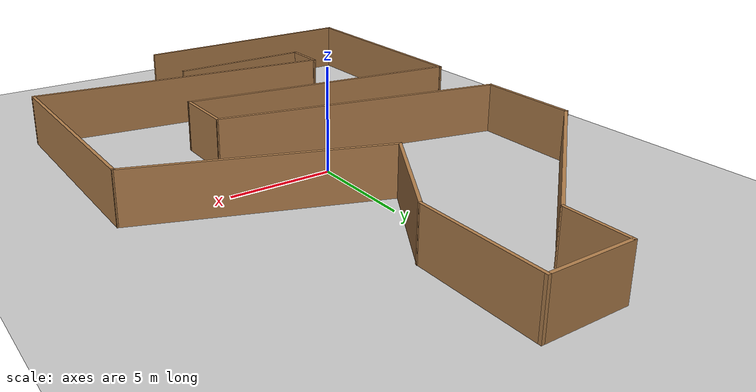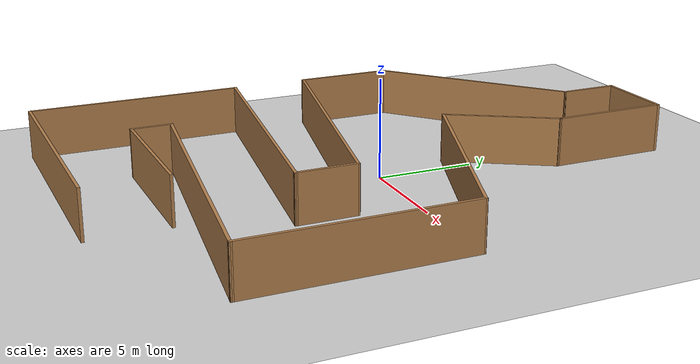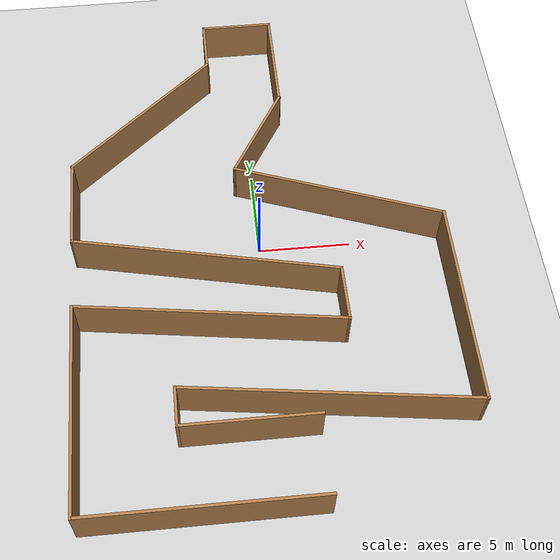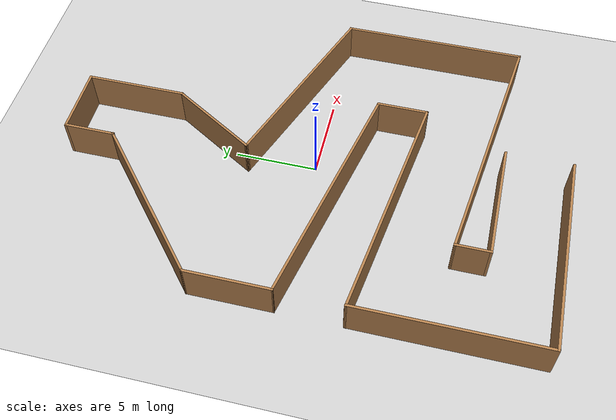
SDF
<sdf version="1.6">
 <world name="default">
  <light name="sun" type="directional">
   <pose>0 0 10 0 -0 0</pose>
   <diffuse>0.8 0.8 0.8 1</diffuse>
   <specular>0.1 0.1 0.1 1</specular>
   <attenuation>
    <range>1000</range>
    <constant>0.9</constant>
    <linear>0.01</linear>
    <quadratic>0.001</quadratic>
   </attenuation>
   <direction>-0.5 0.5 -1</direction>
  </light>
  <model name="ground_plane">
   <static>1</static>
   <link name="link">
    <collision name="collision">
     <geometry><plane><normal>0 0 1</normal><size>100 100</size></plane></geometry>
     <surface><friction><ode><mu>100</mu><mu2>50</mu2></ode></friction></surface>
    </collision>
    <visual name="visual">
     <cast_shadows>0</cast_shadows>
     <geometry><plane><normal>0 0 1</normal><size>100 100</size></plane></geometry>
     <material>
      <script><uri>file://media/materials/scripts/gazebo.material</uri><name>Gazebo/Grey</name></script>
     </material>
    </visual>
   </link>
  </model>
  <gravity>0 0 -9.8</gravity>
  <magnetic_field>6e-06 2.3e-05 -4.2e-05</magnetic_field>
  <atmosphere type="adiabatic"/>
  <physics name="default_physics" default="0" type="ode">
   <max_step_size>0.004</max_step_size>
   <real_time_factor>1</real_time_factor>
   <real_time_update_rate>5000</real_time_update_rate>
   <ode><solver><type>quick</type><iters>100</iters></solver></ode>
  </physics>
  <scene><ambient>0.4 0.4 0.4 1</ambient><background>0.7 0.7 0.7 1</background><shadows>1</shadows></scene>
  <spherical_coordinates>
   <surface_model>EARTH_WGS84</surface_model>
   <latitude_deg>0</latitude_deg>
   <longitude_deg>0</longitude_deg>
   <elevation>0</elevation>
   <heading_deg>0</heading_deg>
  </spherical_coordinates>
  <include><uri>model://Parkour1</uri><name>parkour</name></include>
 </world>
</sdf>

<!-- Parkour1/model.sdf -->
<sdf version='1.6'>
  <model name='Parkour1'>
    <pose frame=''>-0.004858 0.00018 0 0 -0 0</pose>
    <link name='Wall_16'>
      <collision name='Wall_16_Collision'>
        <geometry>
          <box>
            <size>3.15 0.15 2.5</size>
          </box>
        </geometry>
        <pose frame=''>0 0 1.25 0 -0 0</pose>
      </collision>
      <visual name='Wall_16_Visual'>
        <pose frame=''>0 0 1.25 0 -0 0</pose>
        <geometry>
          <box>
            <size>3.15 0.15 2.5</size>
          </box>
        </geometry>
        <material>
          <script>
            <uri>file://media/materials/scripts/gazebo.material</uri>
            <name>Gazebo/Wood</name>
          </script>
          <ambient>1 1 1 1</ambient>
        </material>
      </visual>
      <pose frame=''>-1.99514 13.4998 0 0 0 -1.5708</pose>
    </link>
    <link name='Wall_17'>
      <collision name='Wall_17_Collision'>
        <geometry>
          <box>
            <size>10.7801 0.15 2.5</size>
          </box>
        </geometry>
        <pose frame=''>0 0 1.25 0 -0 0</pose>
      </collision>
      <visual name='Wall_17_Visual'>
        <pose frame=''>0 0 1.25 0 -0 0</pose>
        <geometry>
          <box>
            <size>10.7801 0.15 2.5</size>
          </box>
        </geometry>
        <material>
          <script>
            <uri>file://media/materials/scripts/gazebo.material</uri>
            <name>Gazebo/Wood</name>
          </script>
          <ambient>1 1 1 1</ambient>
        </material>
      </visual>
      <pose frame=''>-5.99514 8.49982 0 0 0 -2.42276</pose>
    </link>
    <link name='Wall_18'>
      <collision name='Wall_18_Collision'>
        <geometry>
          <box>
            <size>5.15 0.15 2.5</size>
          </box>
        </geometry>
        <pose frame=''>0 0 1.25 0 -0 0</pose>
      </collision>
      <visual name='Wall_18_Visual'>
        <pose frame=''>0 0 1.25 0 -0 0</pose>
        <geometry>
          <box>
            <size>5.15 0.15 2.5</size>
          </box>
        </geometry>
        <material>
          <script>
            <uri>file://media/materials/scripts/gazebo.material</uri>
            <name>Gazebo/Wood</name>
          </script>
          <ambient>1 1 1 1</ambient>
        </material>
      </visual>
      <pose frame=''>-9.99514 2.49982 0 0 0 -1.5708</pose>
    </link>
    <link name='Wall_20'>
      <collision name='Wall_20_Collision'>
        <geometry>
          <box>
            <size>3.15 0.15 2.5</size>
          </box>
        </geometry>
        <pose frame=''>0 0 1.25 0 -0 0</pose>
      </collision>
      <visual name='Wall_20_Visual'>
        <pose frame=''>0 0 1.25 0 -0 0</pose>
        <geometry>
          <box>
            <size>3.15 0.15 2.5</size>
          </box>
        </geometry>
        <material>
          <script>
            <uri>file://media/materials/scripts/gazebo.material</uri>
            <name>Gazebo/Wood</name>
          </script>
          <ambient>1 1 1 1</ambient>
        </material>
      </visual>
      <pose frame=''>4.00486 -4.50018 0 0 0 -1.5708</pose>
    </link>
    <link name='Wall_21'>
      <collision name='Wall_21_Collision'>
        <geometry>
          <box>
            <size>14.2921 0.15 2.5</size>
          </box>
        </geometry>
        <pose frame=''>0 0 1.25 0 -0 0</pose>
      </collision>
      <visual name='Wall_21_Visual'>
        <pose frame=''>0 0 1.25 0 -0 0</pose>
        <geometry>
          <box>
            <size>14.2921 0.15 2.5</size>
          </box>
        </geometry>
        <material>
          <script>
            <uri>file://media/materials/scripts/gazebo.material</uri>
            <name>Gazebo/Wood</name>
          </script>
          <ambient>1 1 1 1</ambient>
        </material>
      </visual>
      <pose frame=''>-2.99514 -5.00018 0 0 -0 2.9997</pose>
    </link>
    <link name='Wall_22'>
      <collision name='Wall_22_Collision'>
        <geometry>
          <box>
            <size>11.15 0.15 2.5</size>
          </box>
        </geometry>
        <pose frame=''>0 0 1.25 0 -0 0</pose>
      </collision>
      <visual name='Wall_22_Visual'>
        <pose frame=''>0 0 1.25 0 -0 0</pose>
        <geometry>
          <box>
            <size>11.15 0.15 2.5</size>
          </box>
        </geometry>
        <material>
          <script>
            <uri>file://media/materials/scripts/gazebo.material</uri>
            <name>Gazebo/Wood</name>
          </script>
          <ambient>1 1 1 1</ambient>
        </material>
      </visual>
      <pose frame=''>-9.99514 -9.50018 0 0 0 -1.5708</pose>
    </link>
    <link name='Wall_23'>
      <collision name='Wall_23_Collision'>
        <geometry>
          <box>
            <size>12.15 0.15 2.5</size>
          </box>
        </geometry>
        <pose frame=''>0 0 1.25 0 -0 0</pose>
      </collision>
      <visual name='Wall_23_Visual'>
        <pose frame=''>0 0 1.25 0 -0 0</pose>
        <geometry>
          <box>
            <size>12.15 0.15 2.5</size>
          </box>
        </geometry>
        <material>
          <script>
            <uri>file://media/materials/scripts/gazebo.material</uri>
            <name>Gazebo/Wood</name>
          </script>
          <ambient>1 1 1 1</ambient>
        </material>
      </visual>
      <pose frame=''>-3.99514 -15.0002 0 0 -0 0</pose>
    </link>
    <link name='Wall_25'>
      <collision name='Wall_25_Collision'>
        <geometry>
          <box>
            <size>7.15 0.15 2.5</size>
          </box>
        </geometry>
        <pose frame=''>0 0 1.25 0 -0 0</pose>
      </collision>
      <visual name='Wall_25_Visual'>
        <pose frame=''>0 0 1.25 0 -0 0</pose>
        <geometry>
          <box>
            <size>7.15 0.15 2.5</size>
          </box>
        </geometry>
        <material>
          <script>
            <uri>file://media/materials/scripts/gazebo.material</uri>
            <name>Gazebo/Wood</name>
          </script>
          <ambient>1 1 1 1</ambient>
        </material>
      </visual>
      <pose frame=''>-1.49514 -11.0002 0 0 -0 3.14159</pose>
    </link>
    <link name='Wall_26'>
      <collision name='Wall_26_Collision'>
        <geometry>
          <box>
            <size>2.15 0.15 2.5</size>
          </box>
        </geometry>
        <pose frame=''>0 0 1.25 0 -0 0</pose>
      </collision>
      <visual name='Wall_26_Visual'>
        <pose frame=''>0 0 1.25 0 -0 0</pose>
        <geometry>
          <box>
            <size>2.15 0.15 2.5</size>
          </box>
        </geometry>
        <material>
          <script>
            <uri>file://media/materials/scripts/gazebo.material</uri>
            <name>Gazebo/Wood</name>
          </script>
          <ambient>1 1 1 1</ambient>
        </material>
      </visual>
      <pose frame=''>-4.99514 -10.0002 0 0 -0 1.5708</pose>
    </link>
    <link name='Wall_27'>
      <collision name='Wall_27_Collision'>
        <geometry>
          <box>
            <size>15.2827 0.15 2.5</size>
          </box>
        </geometry>
        <pose frame=''>0 0 1.25 0 -0 0</pose>
      </collision>
      <visual name='Wall_27_Visual'>
        <pose frame=''>0 0 1.25 0 -0 0</pose>
        <geometry>
          <box>
            <size>15.2827 0.15 2.5</size>
          </box>
        </geometry>
        <material>
          <script>
            <uri>file://media/materials/scripts/gazebo.material</uri>
            <name>Gazebo/Wood</name>
          </script>
          <ambient>1 1 1 1</ambient>
        </material>
      </visual>
      <pose frame=''>2.50486 -10.0002 0 0 0 -0.132552</pose>
    </link>
    <link name='Wall_28'>
      <collision name='Wall_28_Collision'>
        <geometry>
          <box>
            <size>11.15 0.15 2.5</size>
          </box>
        </geometry>
        <pose frame=''>0 0 1.25 0 -0 0</pose>
      </collision>
      <visual name='Wall_28_Visual'>
        <pose frame=''>0 0 1.25 0 -0 0</pose>
        <geometry>
          <box>
            <size>11.15 0.15 2.5</size>
          </box>
        </geometry>
        <material>
          <script>
            <uri>file://media/materials/scripts/gazebo.material</uri>
            <name>Gazebo/Wood</name>
          </script>
          <ambient>1 1 1 1</ambient>
        </material>
      </visual>
      <pose frame=''>10.0049 -5.50018 0 0 -0 1.5708</pose>
    </link>
    <link name='Wall_29'>
      <collision name='Wall_29_Collision'>
        <geometry>
          <box>
            <size>11.8547 0.15 2.5</size>
          </box>
        </geometry>
        <pose frame=''>0 0 1.25 0 -0 0</pose>
      </collision>
      <visual name='Wall_29_Visual'>
        <pose frame=''>0 0 1.25 0 -0 0</pose>
        <geometry>
          <box>
            <size>11.8547 0.15 2.5</size>
          </box>
        </geometry>
        <material>
          <script>
            <uri>file://media/materials/scripts/gazebo.material</uri>
            <name>Gazebo/Wood</name>
          </script>
          <ambient>1 1 1 1</ambient>
        </material>
      </visual>
      <pose frame=''>4.50486 1.99982 0 0 -0 2.79282</pose>
    </link>
    <link name='Wall_34'>
      <collision name='Wall_34_Collision'>
        <geometry>
          <box>
            <size>6.15072 0.15 2.5</size>
          </box>
        </geometry>
        <pose frame=''>0 0 1.25 0 -0 0</pose>
      </collision>
      <visual name='Wall_34_Visual'>
        <pose frame=''>0 0 1.25 0 -0 0</pose>
        <geometry>
          <box>
            <size>6.15072 0.15 2.5</size>
          </box>
        </geometry>
        <material>
          <script>
            <uri>file://media/materials/scripts/gazebo.material</uri>
            <name>Gazebo/Wood</name>
          </script>
          <ambient>1 1 1 1</ambient>
        </material>
      </visual>
      <pose frame=''>2.00486 11.9998 0 0 -0 1.5708</pose>
    </link>
    <link name='Wall_35'>
      <collision name='Wall_35_Collision'>
        <geometry>
          <box>
            <size>4.15 0.15 2.5</size>
          </box>
        </geometry>
        <pose frame=''>0 0 1.25 0 -0 0</pose>
      </collision>
      <visual name='Wall_35_Visual'>
        <pose frame=''>0 0 1.25 0 -0 0</pose>
        <geometry>
          <box>
            <size>4.15 0.15 2.5</size>
          </box>
        </geometry>
        <material>
          <script>
            <uri>file://media/materials/scripts/gazebo.material</uri>
            <name>Gazebo/Wood</name>
          </script>
          <ambient>1 1 1 1</ambient>
        </material>
      </visual>
      <pose frame=''>0.004858 14.9998 0 0 -0 3.14159</pose>
    </link>
    <link name='Wall_37'>
      <collision name='Wall_37_Collision'>
        <geometry>
          <box>
            <size>14.4678 0.15 2.5</size>
          </box>
        </geometry>
        <pose frame=''>0 0 1.25 0 -0 0</pose>
      </collision>
      <visual name='Wall_37_Visual'>
        <pose frame=''>0 0 1.25 0 -0 0</pose>
        <geometry>
          <box>
            <size>14.4678 0.15 2.5</size>
          </box>
        </geometry>
        <material>
          <script>
            <uri>file://media/materials/scripts/gazebo.material</uri>
            <name>Gazebo/Wood</name>
          </script>
          <ambient>1 1 1 1</ambient>
        </material>
      </visual>
      <pose frame=''>-2.99514 -1.50018 0 0 -0 2.9305</pose>
    </link>
    <link name='Wall_41'>
      <collision name='Wall_41_Collision'>
        <geometry>
          <box>
            <size>5.98095 0.15 2.5</size>
          </box>
        </geometry>
        <pose frame=''>0 0 1.25 0 -0 0</pose>
      </collision>
      <visual name='Wall_41_Visual'>
        <pose frame=''>0 0 1.25 0 -0 0</pose>
        <geometry>
          <box>
            <size>5.98095 0.15 2.5</size>
          </box>
        </geometry>
        <material>
          <script>
            <uri>file://media/materials/scripts/gazebo.material</uri>
            <name>Gazebo/Wood</name>
          </script>
          <ambient>1 1 1 1</ambient>
        </material>
      </visual>
      <pose frame=''>0.504858 6.49982 0 0 -0 1.03038</pose>
    </link>
    <static>1</static>
  </model>
</sdf>
